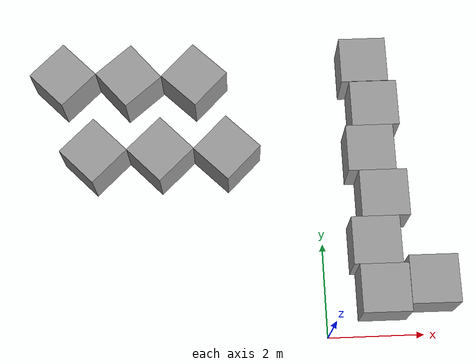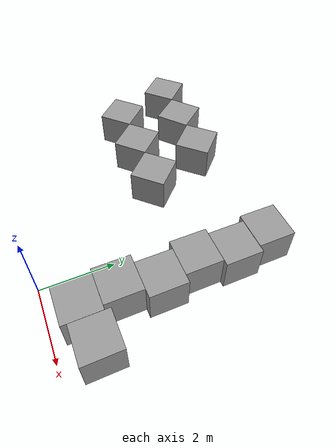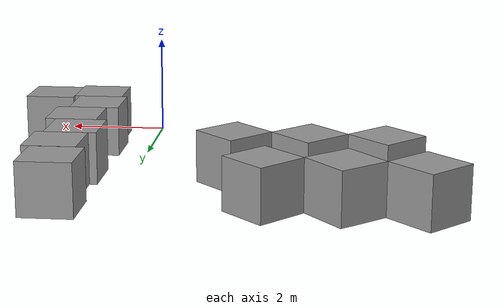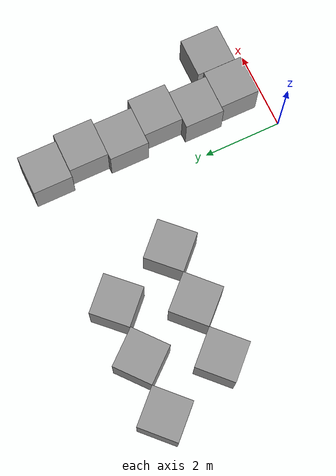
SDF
<sdf version="1.6">
 <world name="default">
  <gravity>0 0 -9.8</gravity>
  <magnetic_field>6e-06 2.3e-05 -4.2e-05</magnetic_field>
  <atmosphere type="adiabatic"/>
  <physics name="default_physics" default="0" type="ode">
   <max_step_size>0.001</max_step_size>
   <real_time_factor>1</real_time_factor>
   <real_time_update_rate>1000</real_time_update_rate>
  </physics>
  <scene>
   <ambient>0.4 0.4 0.4 1</ambient>
   <background>0.7 0.7 0.7 1</background>
   <shadows>1</shadows>
   <grid>0</grid>
   <origin_visual>0</origin_visual>
  </scene>
  <spherical_coordinates>
   <surface_model>EARTH_WGS84</surface_model>
   <latitude_deg>0</latitude_deg>
   <longitude_deg>0</longitude_deg>
   <elevation>0</elevation>
   <heading_deg>0</heading_deg>
  </spherical_coordinates>
  <light name="RetailShop_CeilingLight_001" type="point">
   <pose>2.77442 -3.62815 3.17847 0 -0 0</pose>
   <diffuse>0.5 0.5 0.5 1</diffuse>
   <specular>0.1 0.1 0.1 1</specular>
   <attenuation>
    <range>20</range>
    <constant>0.32</constant>
    <linear>0.01</linear>
    <quadratic>0.03</quadratic>
   </attenuation>
   <cast_shadows>0</cast_shadows>
   <direction>0 0 -1</direction>
  </light>
  <light name="RetailShop_CeilingLight_002" type="point">
   <pose>5.38399 -5.38371 3.17847 0 -0 0</pose>
   <diffuse>0.5 0.5 0.5 1</diffuse>
   <specular>0.1 0.1 0.1 1</specular>
   <attenuation>
    <range>20</range>
    <constant>0.32</constant>
    <linear>0.01</linear>
    <quadratic>0.03</quadratic>
   </attenuation>
   <cast_shadows>0</cast_shadows>
   <direction>0 0 -1</direction>
  </light>
  <light name="RetailShop_CeilingLight_003" type="point">
   <pose>5.38399 0.04192 3.17847 0 -0 0</pose>
   <diffuse>0.5 0.5 0.5 1</diffuse>
   <specular>0.1 0.1 0.1 1</specular>
   <attenuation>
    <range>20</range>
    <constant>0.32</constant>
    <linear>0.01</linear>
    <quadratic>0.03</quadratic>
   </attenuation>
   <cast_shadows>0</cast_shadows>
   <direction>0 0 -1</direction>
  </light>
  <light name="RetailShop_CeilingLight_004" type="point">
   <pose>-3.21067 -5.38371 3.17847 0 -0 0</pose>
   <diffuse>0.5 0.5 0.5 1</diffuse>
   <specular>0.1 0.1 0.1 1</specular>
   <attenuation>
    <range>20</range>
    <constant>0.32</constant>
    <linear>0.01</linear>
    <quadratic>0.03</quadratic>
   </attenuation>
   <cast_shadows>0</cast_shadows>
   <direction>0 0 -1</direction>
  </light>
  <light name="RetailShop_CeilingLight_005" type="point">
   <pose>-3.271 2.68593 3.17847 0 -0 0</pose>
   <diffuse>0.5 0.5 0.5 1</diffuse>
   <specular>0.1 0.1 0.1 1</specular>
   <attenuation>
    <range>20</range>
    <constant>0.32</constant>
    <linear>0.01</linear>
    <quadratic>0.03</quadratic>
   </attenuation>
   <cast_shadows>0</cast_shadows>
   <direction>0 0 -1</direction>
  </light>
  <light name="RetailShop_CeilingLight_006" type="point">
   <pose>1.4932 4.69237 3.17847 0 -0 0</pose>
   <diffuse>0.5 0.5 0.5 1</diffuse>
   <specular>0.1 0.1 0.1 1</specular>
   <attenuation>
    <range>20</range>
    <constant>0.32</constant>
    <linear>0.01</linear>
    <quadratic>0.03</quadratic>
   </attenuation>
   <cast_shadows>0</cast_shadows>
   <direction>0 0 -1</direction>
  </light>
  <audio><device>default</device></audio>
  <light name="user_directional_light_0" type="directional">
   <pose>1.49712 -12.0596 1 0 -0 0</pose>
   <diffuse>0.5 0.5 0.5 1</diffuse>
   <specular>0.1 0.1 0.1 1</specular>
   <direction>0.1 0.1 -0.9</direction>
   <attenuation>
    <range>20</range>
    <constant>0.5</constant>
    <linear>0.01</linear>
    <quadratic>0.001</quadratic>
   </attenuation>
  </light>
  <model name="unit_box">
   <pose>-5.44936 5.69931 0.513382 0 -0 -2.36434</pose>
   <link name="link">
    <inertial>
     <mass>1</mass>
     <inertia>
      <ixx>0.166667</ixx>
      <ixy>0</ixy>
      <ixz>0</ixz>
      <iyy>0.166667</iyy>
      <iyz>0</iyz>
      <izz>0.166667</izz>
     </inertia>
    </inertial>
    <collision name="collision"><geometry><box><size>1 1 1</size></box></geometry></collision>
    <visual name="visual">
     <geometry><box><size>1 1 1</size></box></geometry>
     <material>
      <script><name>Gazebo/Grey</name><uri>file://media/materials/scripts/gazebo.material</uri></script>
     </material>
    </visual>
   </link>
  </model>
  <model name="unit_box_0">
   <pose>-4.7868 3.95392 0.513382 -0 -0 -0.794191</pose>
   <link name="link">
    <inertial>
     <mass>1</mass>
     <inertia>
      <ixx>0.166667</ixx>
      <ixy>0</ixy>
      <ixz>0</ixz>
      <iyy>0.166667</iyy>
      <iyz>0</iyz>
      <izz>0.166667</izz>
     </inertia>
    </inertial>
    <collision name="collision"><geometry><box><size>1 1 1</size></box></geometry></collision>
    <visual name="visual">
     <geometry><box><size>1 1 1</size></box></geometry>
     <material>
      <script><name>Gazebo/Grey</name><uri>file://media/materials/scripts/gazebo.material</uri></script>
     </material>
    </visual>
   </link>
  </model>
  <model name="unit_box_1">
   <pose>2.14956 0.979146 0.513382 -0 -0 -0.000227</pose>
   <link name="link">
    <inertial>
     <mass>1</mass>
     <inertia>
      <ixx>0.166667</ixx>
      <ixy>0</ixy>
      <ixz>0</ixz>
      <iyy>0.166667</iyy>
      <iyz>0</iyz>
      <izz>0.166667</izz>
     </inertia>
    </inertial>
    <collision name="collision"><geometry><box><size>1 1 1</size></box></geometry></collision>
    <visual name="visual">
     <geometry><box><size>1 1 1</size></box></geometry>
     <material>
      <script><name>Gazebo/Grey</name><uri>file://media/materials/scripts/gazebo.material</uri></script>
     </material>
    </visual>
   </link>
  </model>
  <model name="unit_box_2">
   <pose>1.14834 0.827616 0.513382 0 -0 0.001203</pose>
   <link name="link">
    <inertial>
     <mass>1</mass>
     <inertia>
      <ixx>0.166667</ixx>
      <ixy>0</ixy>
      <ixz>0</ixz>
      <iyy>0.166667</iyy>
      <iyz>0</iyz>
      <izz>0.166667</izz>
     </inertia>
    </inertial>
    <collision name="collision"><geometry><box><size>1 1 1</size></box></geometry></collision>
    <visual name="visual">
     <geometry><box><size>1 1 1</size></box></geometry>
     <material>
      <script><name>Gazebo/Grey</name><uri>file://media/materials/scripts/gazebo.material</uri></script>
     </material>
    </visual>
   </link>
  </model>
  <model name="unit_box_3">
   <pose>1.0345 1.82757 0.513379 5e-06 -1e-06 0.001144</pose>
   <link name="link">
    <inertial>
     <mass>1</mass>
     <inertia>
      <ixx>0.166667</ixx>
      <ixy>0</ixy>
      <ixz>0</ixz>
      <iyy>0.166667</iyy>
      <iyz>0</iyz>
      <izz>0.166667</izz>
     </inertia>
    </inertial>
    <collision name="collision"><geometry><box><size>1 1 1</size></box></geometry></collision>
    <visual name="visual">
     <geometry><box><size>1 1 1</size></box></geometry>
     <material>
      <script><name>Gazebo/Grey</name><uri>file://media/materials/scripts/gazebo.material</uri></script>
     </material>
    </visual>
   </link>
  </model>
  <model name="unit_box_4">
   <pose>1.26737 2.82785 0.513225 0 -0 0.001161</pose>
   <link name="link">
    <inertial>
     <mass>1</mass>
     <inertia>
      <ixx>0.166667</ixx>
      <ixy>0</ixy>
      <ixz>0</ixz>
      <iyy>0.166667</iyy>
      <iyz>0</iyz>
      <izz>0.166667</izz>
     </inertia>
    </inertial>
    <collision name="collision"><geometry><box><size>1 1 1</size></box></geometry></collision>
    <visual name="visual">
     <geometry><box><size>1 1 1</size></box></geometry>
     <material>
      <script><name>Gazebo/Grey</name><uri>file://media/materials/scripts/gazebo.material</uri></script>
     </material>
    </visual>
   </link>
  </model>
  <model name="unit_box_5">
   <pose>1.05271 3.82767 0.513382 0 -0 0.001136</pose>
   <link name="link">
    <inertial>
     <mass>1</mass>
     <inertia>
      <ixx>0.166667</ixx>
      <ixy>0</ixy>
      <ixz>0</ixz>
      <iyy>0.166667</iyy>
      <iyz>0</iyz>
      <izz>0.166667</izz>
     </inertia>
    </inertial>
    <collision name="collision"><geometry><box><size>1 1 1</size></box></geometry></collision>
    <visual name="visual">
     <geometry><box><size>1 1 1</size></box></geometry>
     <material>
      <script><name>Gazebo/Grey</name><uri>file://media/materials/scripts/gazebo.material</uri></script>
     </material>
    </visual>
   </link>
  </model>
  <model name="unit_box_6">
   <pose>1.19863 4.82783 0.513382 0 -0 0.001131</pose>
   <link name="link">
    <inertial>
     <mass>1</mass>
     <inertia>
      <ixx>0.166667</ixx>
      <ixy>0</ixy>
      <ixz>0</ixz>
      <iyy>0.166667</iyy>
      <iyz>0</iyz>
      <izz>0.166667</izz>
     </inertia>
    </inertial>
    <collision name="collision"><geometry><box><size>1 1 1</size></box></geometry></collision>
    <visual name="visual">
     <geometry><box><size>1 1 1</size></box></geometry>
     <material>
      <script><name>Gazebo/Grey</name><uri>file://media/materials/scripts/gazebo.material</uri></script>
     </material>
    </visual>
   </link>
  </model>
  <model name="unit_box_7">
   <pose>1.03157 5.8327 0.513382 0 -0 0.002233</pose>
   <link name="link">
    <inertial>
     <mass>1</mass>
     <inertia>
      <ixx>0.166667</ixx>
      <ixy>0</ixy>
      <ixz>0</ixz>
      <iyy>0.166667</iyy>
      <iyz>0</iyz>
      <izz>0.166667</izz>
     </inertia>
    </inertial>
    <collision name="collision"><geometry><box><size>1 1 1</size></box></geometry></collision>
    <visual name="visual">
     <geometry><box><size>1 1 1</size></box></geometry>
     <material>
      <script><name>Gazebo/Grey</name><uri>file://media/materials/scripts/gazebo.material</uri></script>
     </material>
    </visual>
   </link>
  </model>
  <model name="unit_box_8">
   <pose>-4.03862 5.63686 0.513382 0 -0 -0.867452</pose>
   <link name="link">
    <inertial>
     <mass>1</mass>
     <inertia>
      <ixx>0.166667</ixx>
      <ixy>0</ixy>
      <ixz>0</ixz>
      <iyy>0.166667</iyy>
      <iyz>0</iyz>
      <izz>0.166667</izz>
     </inertia>
    </inertial>
    <collision name="collision"><geometry><box><size>1 1 1</size></box></geometry></collision>
    <visual name="visual">
     <geometry><box><size>1 1 1</size></box></geometry>
     <material>
      <script><name>Gazebo/Grey</name><uri>file://media/materials/scripts/gazebo.material</uri></script>
     </material>
    </visual>
   </link>
  </model>
  <model name="unit_box_9">
   <pose>-2.62936 5.61397 0.513382 0 -0 -0.766145</pose>
   <link name="link">
    <inertial>
     <mass>1</mass>
     <inertia>
      <ixx>0.166667</ixx>
      <ixy>0</ixy>
      <ixz>0</ixz>
      <iyy>0.166667</iyy>
      <iyz>0</iyz>
      <izz>0.166667</izz>
     </inertia>
    </inertial>
    <collision name="collision"><geometry><box><size>1 1 1</size></box></geometry></collision>
    <visual name="visual">
     <geometry><box><size>1 1 1</size></box></geometry>
     <material>
      <script><name>Gazebo/Grey</name><uri>file://media/materials/scripts/gazebo.material</uri></script>
     </material>
    </visual>
   </link>
  </model>
  <model name="unit_box_10">
   <pose>-3.37774 3.94272 0.513372 0 0 -0.799798</pose>
   <link name="link">
    <inertial>
     <mass>1</mass>
     <inertia>
      <ixx>0.166667</ixx>
      <ixy>0</ixy>
      <ixz>0</ixz>
      <iyy>0.166667</iyy>
      <iyz>0</iyz>
      <izz>0.166667</izz>
     </inertia>
    </inertial>
    <collision name="collision"><geometry><box><size>1 1 1</size></box></geometry></collision>
    <visual name="visual">
     <geometry><box><size>1 1 1</size></box></geometry>
     <material>
      <script><name>Gazebo/Grey</name><uri>file://media/materials/scripts/gazebo.material</uri></script>
     </material>
    </visual>
   </link>
  </model>
  <model name="unit_box_11">
   <pose>-1.96988 3.93212 0.513382 0 -0 -0.776982</pose>
   <link name="link">
    <inertial>
     <mass>1</mass>
     <inertia>
      <ixx>0.166667</ixx>
      <ixy>0</ixy>
      <ixz>0</ixz>
      <iyy>0.166667</iyy>
      <iyz>0</iyz>
      <izz>0.166667</izz>
     </inertia>
    </inertial>
    <collision name="collision"><geometry><box><size>1 1 1</size></box></geometry></collision>
    <visual name="visual">
     <geometry><box><size>1 1 1</size></box></geometry>
     <material>
      <script><name>Gazebo/Grey</name><uri>file://media/materials/scripts/gazebo.material</uri></script>
     </material>
    </visual>
   </link>
  </model>
 </world>
</sdf>
